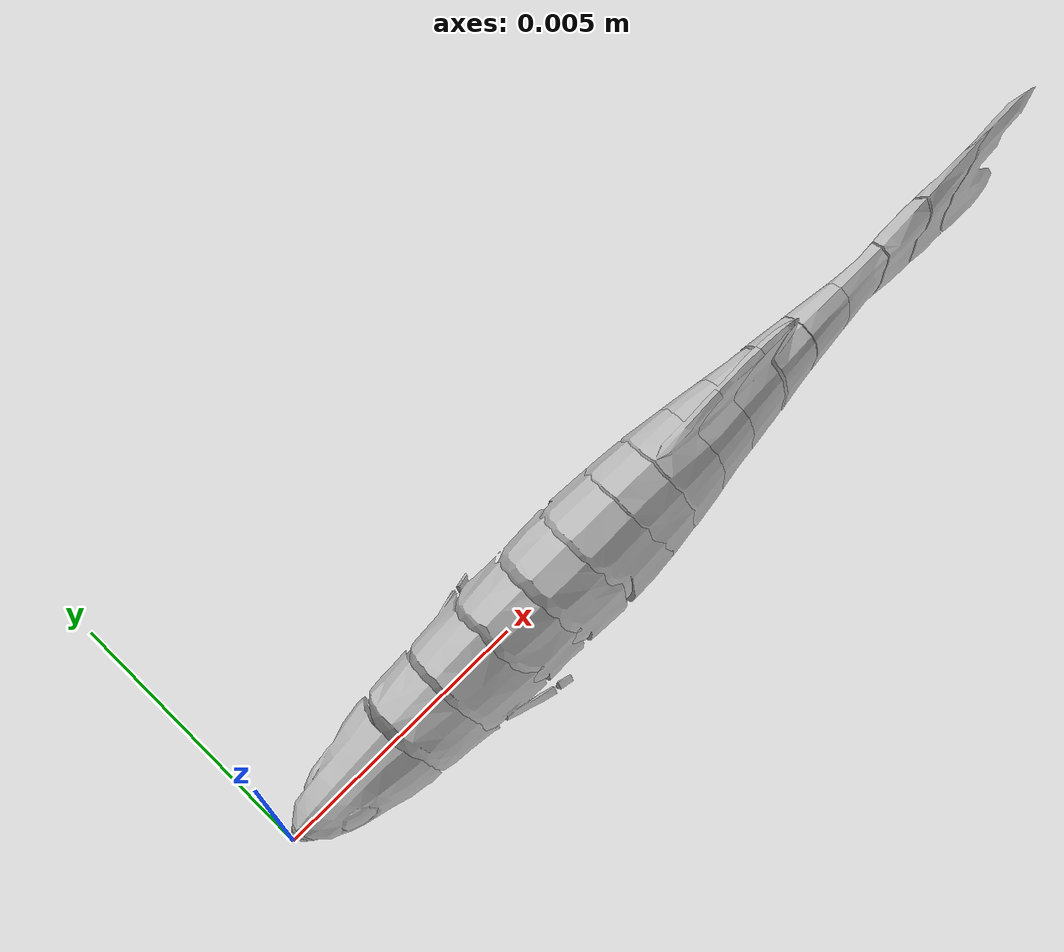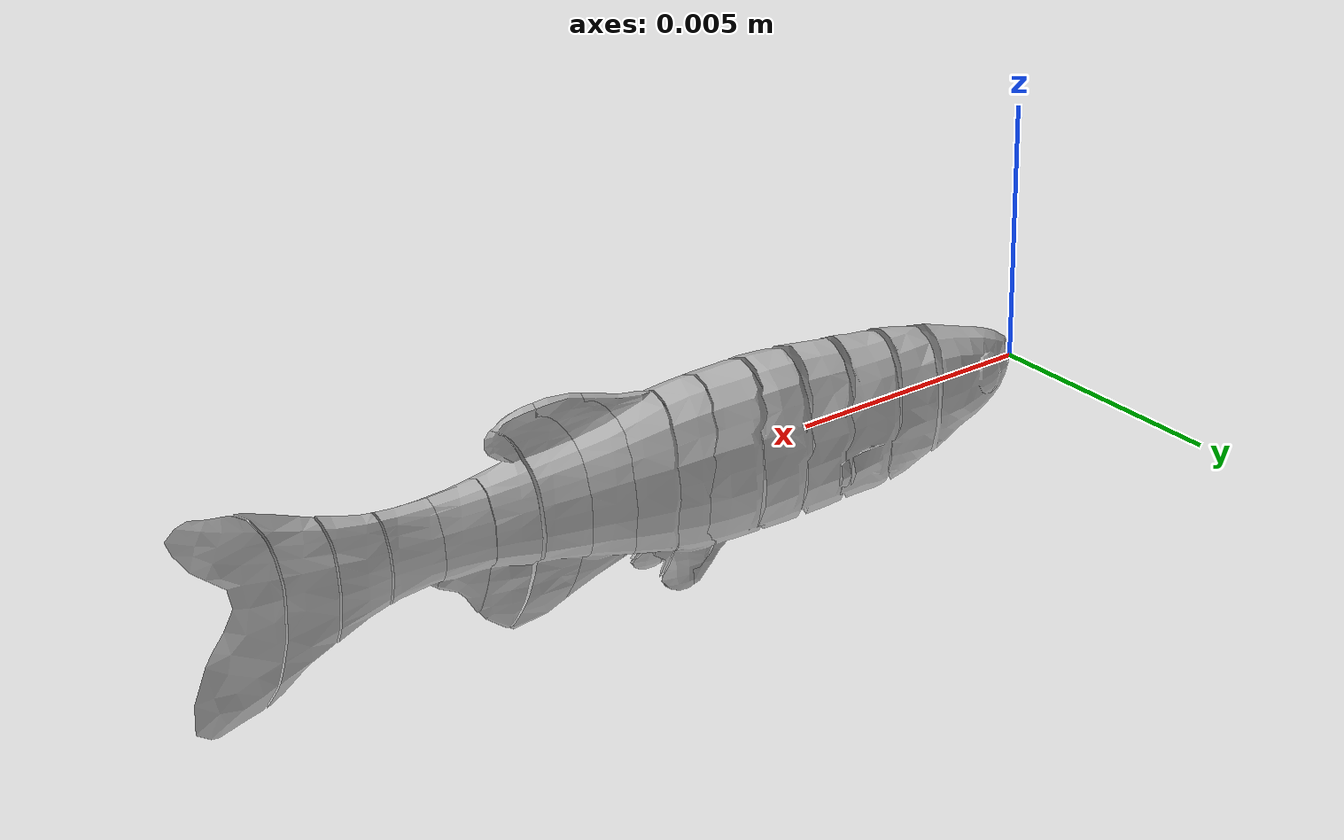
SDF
<?xml version="1.0" ?>
<sdf version="1.6">
  <world name="world">
    <model name="zebrafish">
      <pose>0 0 0 0 0 0</pose>
      <link name="link_0">
        <pose>0.0 0.0 0.0 0 0 0</pose>
        <inertial>
          <pose>0.001525255253894182 1.365008519797692e-06 1.6594825355189447e-05 0.0 0.0 0.0</pose>
          <mass>3.2734375504999984e-06</mass>
          <inertia>
            <ixx>1.3763417454214432e-12</ixx>
            <ixy>9.234946158467514e-15</ixy>
            <ixz>6.832597463673331e-14</ixz>
            <iyy>1.5327467802419943e-12</iyy>
            <iyz>3.6742706916272953e-16</iyz>
            <izz>1.2178145752787549e-12</izz>
          </inertia>
        </inertial>
        <collision name="link_0_collision">
          <pose>0.0 0.0 0.0 0.0 0.0 0.0</pose>
          <geometry>
            <mesh>
              <uri>meshes_zebrafish/link_0.obj</uri>
              <scale>1.0 1.0 1.0</scale>
            </mesh>
          </geometry>
        </collision>
        <visual name="link_0_visual">
          <pose>0.0 0.0 0.0 0.0 0.0 0.0</pose>
          <geometry>
            <mesh>
              <uri>meshes_zebrafish/link_0.obj</uri>
              <scale>1.0 1.0 1.0</scale>
            </mesh>
          </geometry>
          <material/>
        </visual>
      </link>
      <link name="link_1">
        <pose>0.003000000026077032 0.0 0.0 0 0 0</pose>
        <inertial>
          <pose>-0.0002732492240615168 -1.97994288919193e-08 -5.650116857951326e-05 0.0 0.0 0.0</pose>
          <mass>4.0521463491666665e-06</mass>
          <inertia>
            <ixx>2.8087038294161773e-12</ixx>
            <ixy>2.59860681584197e-16</ixy>
            <ixz>7.53613830741763e-14</ixz>
            <iyy>2.3503783406325966e-12</iyy>
            <iyz>4.2333460592653663e-16</iyz>
            <izz>1.4029470401400248e-12</izz>
          </inertia>
        </inertial>
        <collision name="link_1_collision">
          <pose>0.0 0.0 0.0 0.0 0.0 0.0</pose>
          <geometry>
            <mesh>
              <uri>meshes_zebrafish/link_1.obj</uri>
              <scale>1.0 1.0 1.0</scale>
            </mesh>
          </geometry>
        </collision>
        <visual name="link_1_visual">
          <pose>0.0 0.0 0.0 0.0 0.0 0.0</pose>
          <geometry>
            <mesh>
              <uri>meshes_zebrafish/link_1.obj</uri>
              <scale>1.0 1.0 1.0</scale>
            </mesh>
          </geometry>
          <material/>
        </visual>
      </link>
      <link name="link_2">
        <pose>0.004000000189989805 0.0 0.0 0 0 0</pose>
        <inertial>
          <pose>-0.00022717678486607507 -8.219959851907085e-08 -6.289915105203633e-05 0.0 0.0 0.0</pose>
          <mass>4.854872365333333e-06</mass>
          <inertia>
            <ixx>4.054950923692486e-12</ixx>
            <ixy>-1.1484001297372617e-16</ixy>
            <ixz>1.1419704220898796e-13</ixz>
            <iyy>3.3781171583254866e-12</iyy>
            <iyz>6.818633027387787e-16</iyz>
            <izz>1.981751379253991e-12</izz>
          </inertia>
        </inertial>
        <collision name="link_2_collision">
          <pose>0.0 0.0 0.0 0.0 0.0 0.0</pose>
          <geometry>
            <mesh>
              <uri>meshes_zebrafish/link_2.obj</uri>
              <scale>1.0 1.0 1.0</scale>
            </mesh>
          </geometry>
        </collision>
        <visual name="link_2_visual">
          <pose>0.0 0.0 0.0 0.0 0.0 0.0</pose>
          <geometry>
            <mesh>
              <uri>meshes_zebrafish/link_2.obj</uri>
              <scale>1.0 1.0 1.0</scale>
            </mesh>
          </geometry>
          <material/>
        </visual>
      </link>
      <link name="link_3">
        <pose>0.004999999888241291 0.0 0.0 0 0 0</pose>
        <inertial>
          <pose>-0.0002226231496408773 3.3757354961996367e-07 -3.5049441185557767e-06 0.0 0.0 0.0</pose>
          <mass>5.157439432833333e-06</mass>
          <inertia>
            <ixx>4.67697383062243e-12</ixx>
            <ixy>-9.074877137566703e-16</ixy>
            <ixz>3.6481284000477364e-14</ixz>
            <iyy>3.9454530406174475e-12</iyy>
            <iyz>-5.468168704910777e-16</iyz>
            <izz>2.0510055572515746e-12</izz>
          </inertia>
        </inertial>
        <collision name="link_3_collision">
          <pose>0.0 0.0 0.0 0.0 0.0 0.0</pose>
          <geometry>
            <mesh>
              <uri>meshes_zebrafish/link_3.obj</uri>
              <scale>1.0 1.0 1.0</scale>
            </mesh>
          </geometry>
        </collision>
        <visual name="link_3_visual">
          <pose>0.0 0.0 0.0 0.0 0.0 0.0</pose>
          <geometry>
            <mesh>
              <uri>meshes_zebrafish/link_3.obj</uri>
              <scale>1.0 1.0 1.0</scale>
            </mesh>
          </geometry>
          <material/>
        </visual>
      </link>
      <link name="link_4">
        <pose>0.006000000052154064 0.0 0.0 0 0 0</pose>
        <inertial>
          <pose>-0.00019477319484265197 2.3520952322439315e-07 4.5153454879482645e-05 0.0 0.0 0.0</pose>
          <mass>5.498348945e-06</mass>
          <inertia>
            <ixx>5.301401349493594e-12</ixx>
            <ixy>-7.594792361230709e-16</ixy>
            <ixz>-1.2919244220334572e-14</ixz>
            <iyy>4.518545556789769e-12</iyy>
            <iyz>-1.913852691484321e-15</iyz>
            <izz>2.349854946278564e-12</izz>
          </inertia>
        </inertial>
        <collision name="link_4_collision">
          <pose>0.0 0.0 0.0 0.0 0.0 0.0</pose>
          <geometry>
            <mesh>
              <uri>meshes_zebrafish/link_4.obj</uri>
              <scale>1.0 1.0 1.0</scale>
            </mesh>
          </geometry>
        </collision>
        <visual name="link_4_visual">
          <pose>0.0 0.0 0.0 0.0 0.0 0.0</pose>
          <geometry>
            <mesh>
              <uri>meshes_zebrafish/link_4.obj</uri>
              <scale>1.0 1.0 1.0</scale>
            </mesh>
          </geometry>
          <material/>
        </visual>
      </link>
      <link name="link_5">
        <pose>0.007000000216066837 0.0 0.0 0 0 0</pose>
        <inertial>
          <pose>-0.00020395735361605007 -8.842410672844107e-08 4.337361965129497e-05 0.0 0.0 0.0</pose>
          <mass>5.479874165666666e-06</mass>
          <inertia>
            <ixx>5.300408358361644e-12</ixx>
            <ixy>2.2081984687633257e-16</ixy>
            <ixz>2.5655783521762258e-14</ixz>
            <iyy>4.488854231172425e-12</iyy>
            <iyz>5.337128725014414e-16</iyz>
            <izz>2.2795643807420016e-12</izz>
          </inertia>
        </inertial>
        <collision name="link_5_collision">
          <pose>0.0 0.0 0.0 0.0 0.0 0.0</pose>
          <geometry>
            <mesh>
              <uri>meshes_zebrafish/link_5.obj</uri>
              <scale>1.0 1.0 1.0</scale>
            </mesh>
          </geometry>
        </collision>
        <visual name="link_5_visual">
          <pose>0.0 0.0 0.0 0.0 0.0 0.0</pose>
          <geometry>
            <mesh>
              <uri>meshes_zebrafish/link_5.obj</uri>
              <scale>1.0 1.0 1.0</scale>
            </mesh>
          </geometry>
          <material/>
        </visual>
      </link>
      <link name="link_6">
        <pose>0.00800000037997961 0.0 0.0 0 0 0</pose>
        <inertial>
          <pose>-0.00024221163159728412 -1.9450732335945777e-07 3.207300392264691e-05 0.0 0.0 0.0</pose>
          <mass>5.159457690333333e-06</mass>
          <inertia>
            <ixx>4.939246005196555e-12</ixx>
            <ixy>6.053666353726204e-16</ixy>
            <ixz>9.647922195089838e-15</ixz>
            <iyy>4.24538394961568e-12</iyy>
            <iyz>-1.9796288817279288e-16</iyz>
            <izz>1.849075636047097e-12</izz>
          </inertia>
        </inertial>
        <collision name="link_6_collision">
          <pose>0.0 0.0 0.0 0.0 0.0 0.0</pose>
          <geometry>
            <mesh>
              <uri>meshes_zebrafish/link_6.obj</uri>
              <scale>1.0 1.0 1.0</scale>
            </mesh>
          </geometry>
        </collision>
        <visual name="link_6_visual">
          <pose>0.0 0.0 0.0 0.0 0.0 0.0</pose>
          <geometry>
            <mesh>
              <uri>meshes_zebrafish/link_6.obj</uri>
              <scale>1.0 1.0 1.0</scale>
            </mesh>
          </geometry>
          <material/>
        </visual>
      </link>
      <link name="link_7">
        <pose>0.008999999612569809 0.0 0.0 0 0 0</pose>
        <inertial>
          <pose>-0.0003052042318265614 -2.714426844606979e-07 0.00015843392122992753 0.0 0.0 0.0</pose>
          <mass>4.249855453833333e-06</mass>
          <inertia>
            <ixx>3.3009859429267404e-12</ixx>
            <ixy>3.1379057053656826e-16</ixy>
            <ixz>-1.649673957428002e-13</ixz>
            <iyy>2.8409817451483943e-12</iyy>
            <iyz>7.12045864460346e-16</iyz>
            <izz>1.293106339839356e-12</izz>
          </inertia>
        </inertial>
        <collision name="link_7_collision">
          <pose>0.0 0.0 0.0 0.0 0.0 0.0</pose>
          <geometry>
            <mesh>
              <uri>meshes_zebrafish/link_7.obj</uri>
              <scale>1.0 1.0 1.0</scale>
            </mesh>
          </geometry>
        </collision>
        <visual name="link_7_visual">
          <pose>0.0 0.0 0.0 0.0 0.0 0.0</pose>
          <geometry>
            <mesh>
              <uri>meshes_zebrafish/link_7.obj</uri>
              <scale>1.0 1.0 1.0</scale>
            </mesh>
          </geometry>
          <material/>
        </visual>
      </link>
      <link name="link_8">
        <pose>0.009999999776482582 0.0 0.0 0 0 0</pose>
        <inertial>
          <pose>-0.00034258391490533507 1.496806484415186e-07 0.00023371407774293266 0.0 0.0 0.0</pose>
          <mass>3.4060886698333332e-06</mass>
          <inertia>
            <ixx>2.3861448209304844e-12</ixx>
            <ixy>4.119826686591595e-17</ixy>
            <ixz>-1.9282902344368923e-13</ixz>
            <iyy>2.2293678879472307e-12</iyy>
            <iyz>2.0877097769727913e-16</iyz>
            <izz>8.426788781595641e-13</izz>
          </inertia>
        </inertial>
        <collision name="link_8_collision">
          <pose>0.0 0.0 0.0 0.0 0.0 0.0</pose>
          <geometry>
            <mesh>
              <uri>meshes_zebrafish/link_8.obj</uri>
              <scale>1.0 1.0 1.0</scale>
            </mesh>
          </geometry>
        </collision>
        <visual name="link_8_visual">
          <pose>0.0 0.0 0.0 0.0 0.0 0.0</pose>
          <geometry>
            <mesh>
              <uri>meshes_zebrafish/link_8.obj</uri>
              <scale>1.0 1.0 1.0</scale>
            </mesh>
          </geometry>
          <material/>
        </visual>
      </link>
      <link name="link_9">
        <pose>0.010999999940395355 0.0 0.0 0 0 0</pose>
        <inertial>
          <pose>-0.00037563688475628207 -1.148331642662189e-08 0.00019189624898692601 0.0 0.0 0.0</pose>
          <mass>2.650774316333333e-06</mass>
          <inertia>
            <ixx>1.7882286047325874e-12</ixx>
            <ixy>7.268954042952895e-17</ixy>
            <ixz>-7.176690563395181e-14</ixz>
            <iyy>1.787960335865206e-12</iyy>
            <iyz>3.481599167776466e-16</iyz>
            <izz>5.124582731408049e-13</izz>
          </inertia>
        </inertial>
        <collision name="link_9_collision">
          <pose>0.0 0.0 0.0 0.0 0.0 0.0</pose>
          <geometry>
            <mesh>
              <uri>meshes_zebrafish/link_9.obj</uri>
              <scale>1.0 1.0 1.0</scale>
            </mesh>
          </geometry>
        </collision>
        <visual name="link_9_visual">
          <pose>0.0 0.0 0.0 0.0 0.0 0.0</pose>
          <geometry>
            <mesh>
              <uri>meshes_zebrafish/link_9.obj</uri>
              <scale>1.0 1.0 1.0</scale>
            </mesh>
          </geometry>
          <material/>
        </visual>
      </link>
      <link name="link_10">
        <pose>0.012000000104308128 0.0 0.0 0 0 0</pose>
        <inertial>
          <pose>-0.00046854741347974294 -3.6455166203015647e-09 0.0001884940614548451 0.0 0.0 0.0</pose>
          <mass>1.7336472188333334e-06</mass>
          <inertia>
            <ixx>9.598222582454625e-13</ixx>
            <ixy>-1.7845489451076185e-17</ixy>
            <ixz>-3.397423168103433e-14</ixz>
            <iyy>9.577834588823694e-13</iyy>
            <iyz>-1.816592266281531e-16</iyz>
            <izz>2.4242768853153455e-13</izz>
          </inertia>
        </inertial>
        <collision name="link_10_collision">
          <pose>0.0 0.0 0.0 0.0 0.0 0.0</pose>
          <geometry>
            <mesh>
              <uri>meshes_zebrafish/link_10.obj</uri>
              <scale>1.0 1.0 1.0</scale>
            </mesh>
          </geometry>
        </collision>
        <visual name="link_10_visual">
          <pose>0.0 0.0 0.0 0.0 0.0 0.0</pose>
          <geometry>
            <mesh>
              <uri>meshes_zebrafish/link_10.obj</uri>
              <scale>1.0 1.0 1.0</scale>
            </mesh>
          </geometry>
          <material/>
        </visual>
      </link>
      <link name="link_11">
        <pose>0.013000000268220901 0.0 0.0 0 0 0</pose>
        <inertial>
          <pose>-0.0004722302698571837 -1.2239207432138651e-07 0.00025506297429544507 0.0 0.0 0.0</pose>
          <mass>1.1791477706666665e-06</mass>
          <inertia>
            <ixx>3.149351261365448e-13</ixx>
            <ixy>2.7370846875597328e-17</ixy>
            <ixz>-2.577821194729109e-14</ixz>
            <iyy>3.590729662203847e-13</iyy>
            <iyz>8.518592623941355e-17</iyz>
            <izz>1.4821632513420026e-13</izz>
          </inertia>
        </inertial>
        <collision name="link_11_collision">
          <pose>0.0 0.0 0.0 0.0 0.0 0.0</pose>
          <geometry>
            <mesh>
              <uri>meshes_zebrafish/link_11.obj</uri>
              <scale>1.0 1.0 1.0</scale>
            </mesh>
          </geometry>
        </collision>
        <visual name="link_11_visual">
          <pose>0.0 0.0 0.0 0.0 0.0 0.0</pose>
          <geometry>
            <mesh>
              <uri>meshes_zebrafish/link_11.obj</uri>
              <scale>1.0 1.0 1.0</scale>
            </mesh>
          </geometry>
          <material/>
        </visual>
      </link>
      <link name="link_12">
        <pose>0.014000000432133675 0.0 0.0 0 0 0</pose>
        <inertial>
          <pose>-0.0004680786036944516 2.4572440914844884e-09 0.0003116856744471307 0.0 0.0 0.0</pose>
          <mass>8.259051296666667e-07</mass>
          <inertia>
            <ixx>1.6659794843056764e-13</ixx>
            <ixy>-5.52908293444439e-18</ixy>
            <ixz>-1.230842217162236e-14</ixz>
            <iyy>2.1634131199119703e-13</iyy>
            <iyz>-2.650283382113267e-17</iyz>
            <izz>9.15907887298476e-14</izz>
          </inertia>
        </inertial>
        <collision name="link_12_collision">
          <pose>0.0 0.0 0.0 0.0 0.0 0.0</pose>
          <geometry>
            <mesh>
              <uri>meshes_zebrafish/link_12.obj</uri>
              <scale>1.0 1.0 1.0</scale>
            </mesh>
          </geometry>
        </collision>
        <visual name="link_12_visual">
          <pose>0.0 0.0 0.0 0.0 0.0 0.0</pose>
          <geometry>
            <mesh>
              <uri>meshes_zebrafish/link_12.obj</uri>
              <scale>1.0 1.0 1.0</scale>
            </mesh>
          </geometry>
          <material/>
        </visual>
      </link>
      <link name="link_13">
        <pose>0.014999999664723873 0.0 0.0 0 0 0</pose>
        <inertial>
          <pose>-0.00041943335924235335 1.3966242424337377e-07 0.00029419906843552914 0.0 0.0 0.0</pose>
          <mass>9.194377328333334e-07</mass>
          <inertia>
            <ixx>2.931650313086033e-13</ixx>
            <ixy>1.3054547149348963e-17</ixy>
            <ixz>-1.9068711707594266e-14</ixz>
            <iyy>3.574669230539107e-13</iyy>
            <iyz>-2.6636393507519912e-18</iyz>
            <izz>9.93681235325705e-14</izz>
          </inertia>
        </inertial>
        <collision name="link_13_collision">
          <pose>0.0 0.0 0.0 0.0 0.0 0.0</pose>
          <geometry>
            <mesh>
              <uri>meshes_zebrafish/link_13.obj</uri>
              <scale>1.0 1.0 1.0</scale>
            </mesh>
          </geometry>
        </collision>
        <visual name="link_13_visual">
          <pose>0.0 0.0 0.0 0.0 0.0 0.0</pose>
          <geometry>
            <mesh>
              <uri>meshes_zebrafish/link_13.obj</uri>
              <scale>1.0 1.0 1.0</scale>
            </mesh>
          </geometry>
          <material/>
        </visual>
      </link>
      <link name="link_14">
        <pose>0.01600000075995922 0.0 0.0 0 0 0</pose>
        <inertial>
          <pose>-0.0004105011887446809 3.835307992705615e-07 0.00020645375017189194 0.0 0.0 0.0</pose>
          <mass>9.366918884999999e-07</mass>
          <inertia>
            <ixx>6.055769405013031e-13</ixx>
            <ixy>1.0627794034772965e-16</ixy>
            <ixz>-2.7850183836831907e-14</ixz>
            <iyy>6.919667416777767e-13</iyy>
            <iyz>-2.384716694942919e-16</iyz>
            <izz>1.0533700069188133e-13</izz>
          </inertia>
        </inertial>
        <collision name="link_14_collision">
          <pose>0.0 0.0 0.0 0.0 0.0 0.0</pose>
          <geometry>
            <mesh>
              <uri>meshes_zebrafish/link_14.obj</uri>
              <scale>1.0 1.0 1.0</scale>
            </mesh>
          </geometry>
        </collision>
        <visual name="link_14_visual">
          <pose>0.0 0.0 0.0 0.0 0.0 0.0</pose>
          <geometry>
            <mesh>
              <uri>meshes_zebrafish/link_14.obj</uri>
              <scale>1.0 1.0 1.0</scale>
            </mesh>
          </geometry>
          <material/>
        </visual>
      </link>
      <link name="link_15">
        <pose>0.017000000923871994 0.0 0.0 0 0 0</pose>
        <inertial>
          <pose>-0.00024512117801505035 5.541966191362484e-08 0.00016953894222371095 0.0 0.0 0.0</pose>
          <mass>8.46120548e-07</mass>
          <inertia>
            <ixx>9.91941296499222e-13</ixx>
            <ixy>1.1063760766064692e-17</ixy>
            <ixz>-5.749952933899053e-14</ixz>
            <iyy>1.1526827694033881e-12</iyy>
            <iyz>9.530338058318321e-17</iyz>
            <izz>1.6645844722995796e-13</izz>
          </inertia>
        </inertial>
        <collision name="link_15_collision">
          <pose>0.0 0.0 0.0 0.0 0.0 0.0</pose>
          <geometry>
            <mesh>
              <uri>meshes_zebrafish/link_15.obj</uri>
              <scale>1.0 1.0 1.0</scale>
            </mesh>
          </geometry>
        </collision>
        <visual name="link_15_visual">
          <pose>0.0 0.0 0.0 0.0 0.0 0.0</pose>
          <geometry>
            <mesh>
              <uri>meshes_zebrafish/link_15.obj</uri>
              <scale>1.0 1.0 1.0</scale>
            </mesh>
          </geometry>
          <material/>
        </visual>
      </link>
      <joint name="joint_0" type="revolute">
        <parent>link_0</parent>
        <child>link_1</child>
        <pose>0 0 0 0 0 0</pose>
        <axis>
          <xyz>0 0 1</xyz>
          <limit>
            <lower>-1.5707963267948966</lower>
            <upper>1.5707963267948966</upper>
            <effort>100</effort>
            <velocity>100</velocity>
          </limit>
        </axis>
      </joint>
      <joint name="joint_1" type="revolute">
        <parent>link_1</parent>
        <child>link_2</child>
        <pose>0 0 0 0 0 0</pose>
        <axis>
          <xyz>0 0 1</xyz>
          <limit>
            <lower>-1.5707963267948966</lower>
            <upper>1.5707963267948966</upper>
            <effort>100</effort>
            <velocity>100</velocity>
          </limit>
        </axis>
      </joint>
      <joint name="joint_2" type="revolute">
        <parent>link_2</parent>
        <child>link_3</child>
        <pose>0 0 0 0 0 0</pose>
        <axis>
          <xyz>0 0 1</xyz>
          <limit>
            <lower>-1.5707963267948966</lower>
            <upper>1.5707963267948966</upper>
            <effort>100</effort>
            <velocity>100</velocity>
          </limit>
        </axis>
      </joint>
      <joint name="joint_3" type="revolute">
        <parent>link_3</parent>
        <child>link_4</child>
        <pose>0 0 0 0 0 0</pose>
        <axis>
          <xyz>0 0 1</xyz>
          <limit>
            <lower>-1.5707963267948966</lower>
            <upper>1.5707963267948966</upper>
            <effort>100</effort>
            <velocity>100</velocity>
          </limit>
        </axis>
      </joint>
      <joint name="joint_4" type="revolute">
        <parent>link_4</parent>
        <child>link_5</child>
        <pose>0 0 0 0 0 0</pose>
        <axis>
          <xyz>0 0 1</xyz>
          <limit>
            <lower>-1.5707963267948966</lower>
            <upper>1.5707963267948966</upper>
            <effort>100</effort>
            <velocity>100</velocity>
          </limit>
        </axis>
      </joint>
      <joint name="joint_5" type="revolute">
        <parent>link_5</parent>
        <child>link_6</child>
        <pose>0 0 0 0 0 0</pose>
        <axis>
          <xyz>0 0 1</xyz>
          <limit>
            <lower>-1.5707963267948966</lower>
            <upper>1.5707963267948966</upper>
            <effort>100</effort>
            <velocity>100</velocity>
          </limit>
        </axis>
      </joint>
      <joint name="joint_6" type="revolute">
        <parent>link_6</parent>
        <child>link_7</child>
        <pose>0 0 0 0 0 0</pose>
        <axis>
          <xyz>0 0 1</xyz>
          <limit>
            <lower>-1.5707963267948966</lower>
            <upper>1.5707963267948966</upper>
            <effort>100</effort>
            <velocity>100</velocity>
          </limit>
        </axis>
      </joint>
      <joint name="joint_7" type="revolute">
        <parent>link_7</parent>
        <child>link_8</child>
        <pose>0 0 0 0 0 0</pose>
        <axis>
          <xyz>0 0 1</xyz>
          <limit>
            <lower>-1.5707963267948966</lower>
            <upper>1.5707963267948966</upper>
            <effort>100</effort>
            <velocity>100</velocity>
          </limit>
        </axis>
      </joint>
      <joint name="joint_8" type="revolute">
        <parent>link_8</parent>
        <child>link_9</child>
        <pose>0 0 0 0 0 0</pose>
        <axis>
          <xyz>0 0 1</xyz>
          <limit>
            <lower>-1.5707963267948966</lower>
            <upper>1.5707963267948966</upper>
            <effort>100</effort>
            <velocity>100</velocity>
          </limit>
        </axis>
      </joint>
      <joint name="joint_9" type="revolute">
        <parent>link_9</parent>
        <child>link_10</child>
        <pose>0 0 0 0 0 0</pose>
        <axis>
          <xyz>0 0 1</xyz>
          <limit>
            <lower>-1.5707963267948966</lower>
            <upper>1.5707963267948966</upper>
            <effort>100</effort>
            <velocity>100</velocity>
          </limit>
        </axis>
      </joint>
      <joint name="joint_10" type="revolute">
        <parent>link_10</parent>
        <child>link_11</child>
        <pose>0 0 0 0 0 0</pose>
        <axis>
          <xyz>0 0 1</xyz>
          <limit>
            <lower>-1.5707963267948966</lower>
            <upper>1.5707963267948966</upper>
            <effort>100</effort>
            <velocity>100</velocity>
          </limit>
        </axis>
      </joint>
      <joint name="joint_11" type="revolute">
        <parent>link_11</parent>
        <child>link_12</child>
        <pose>0 0 0 0 0 0</pose>
        <axis>
          <xyz>0 0 1</xyz>
          <limit>
            <lower>-1.5707963267948966</lower>
            <upper>1.5707963267948966</upper>
            <effort>100</effort>
            <velocity>100</velocity>
          </limit>
        </axis>
      </joint>
      <joint name="joint_12" type="revolute">
        <parent>link_12</parent>
        <child>link_13</child>
        <pose>0 0 0 0 0 0</pose>
        <axis>
          <xyz>0 0 1</xyz>
          <limit>
            <lower>-1.5707963267948966</lower>
            <upper>1.5707963267948966</upper>
            <effort>100</effort>
            <velocity>100</velocity>
          </limit>
        </axis>
      </joint>
      <joint name="joint_13" type="revolute">
        <parent>link_13</parent>
        <child>link_14</child>
        <pose>0 0 0 0 0 0</pose>
        <axis>
          <xyz>0 0 1</xyz>
          <limit>
            <lower>-1.5707963267948966</lower>
            <upper>1.5707963267948966</upper>
            <effort>100</effort>
            <velocity>100</velocity>
          </limit>
        </axis>
      </joint>
      <joint name="joint_14" type="revolute">
        <parent>link_14</parent>
        <child>link_15</child>
        <pose>0 0 0 0 0 0</pose>
        <axis>
          <xyz>0 0 1</xyz>
          <limit>
            <lower>-1.5707963267948966</lower>
            <upper>1.5707963267948966</upper>
            <effort>100</effort>
            <velocity>100</velocity>
          </limit>
        </axis>
      </joint>
    </model>
  </world>
</sdf>
